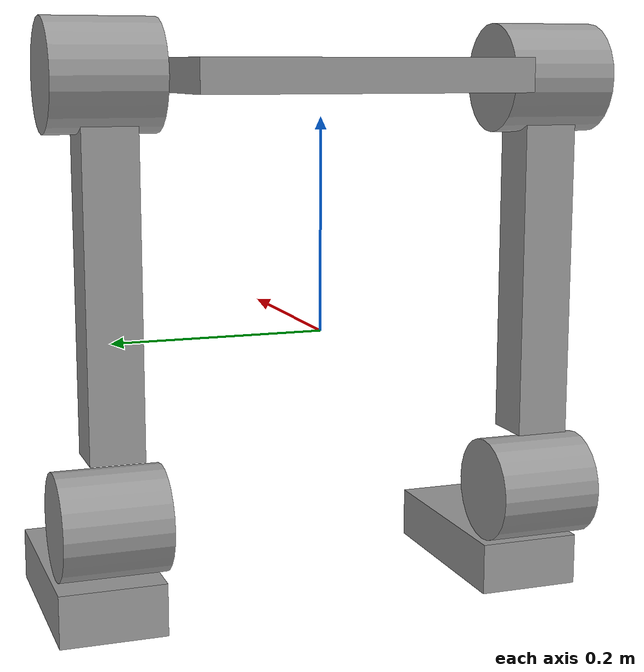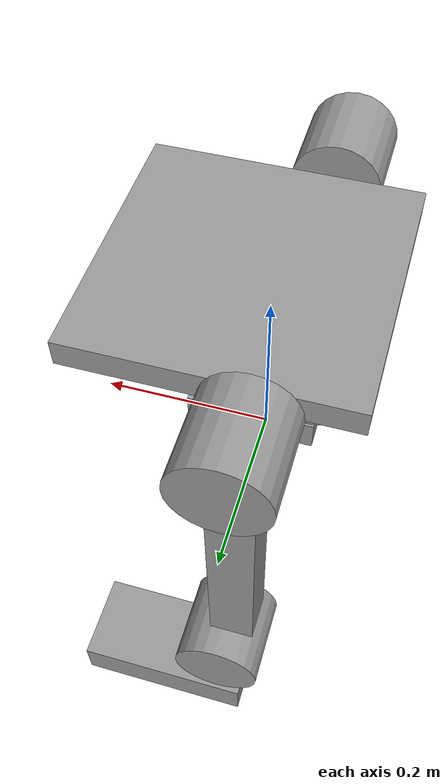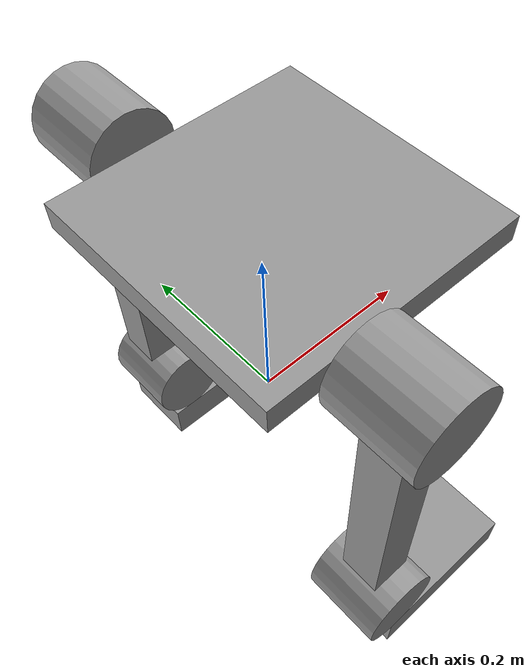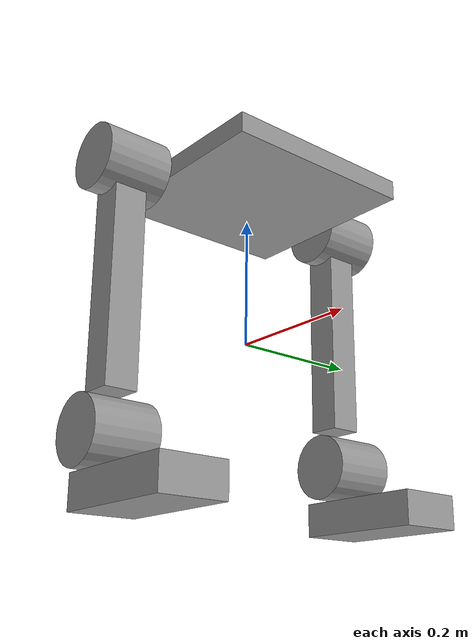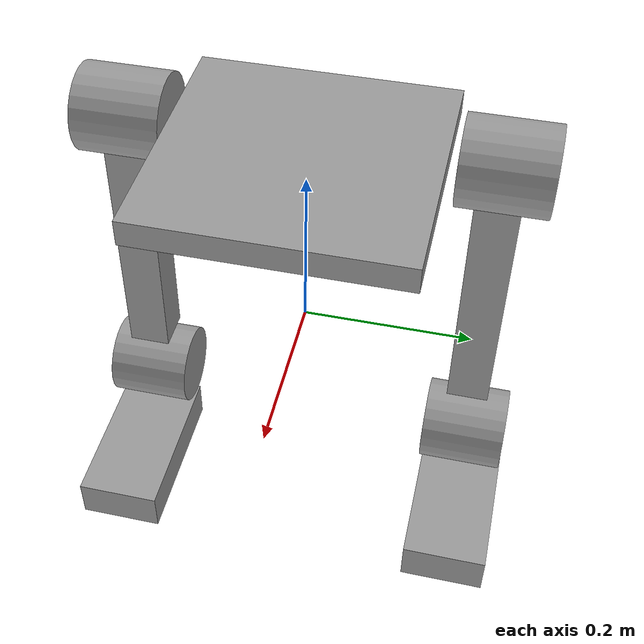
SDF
<?xml version='1.0'?>
<sdf version='1.6'>
  <model name='humanoid'>
    <link name='link_0'>
      <pose frame=''>0.060357 0.210879 -0.241979 0 -0 0</pose>
      <inertial>
        <mass>1</mass>
        <inertia>
          <ixx>0.166667</ixx>
          <ixy>0</ixy>
          <ixz>0</ixz>
          <iyy>0.166667</iyy>
          <iyz>0</iyz>
          <izz>0.166667</izz>
        </inertia>
        <pose frame=''>0 0 0 0 -0 0</pose>
      </inertial>
      <gravity>1</gravity>
      <self_collide>0</self_collide>
      <kinematic>0</kinematic>
      <visual name='visual'>
        <pose frame=''>0 0 0 0 -0 0</pose>
        <geometry>
          <box>
            <size>0.2 0.1 0.05</size>
          </box>
        </geometry>
        <material>
          <lighting>1</lighting>
          <script>
            <uri>file://media/materials/scripts/gazebo.material</uri>
            <name>Gazebo/Grey</name>
          </script>
          <ambient>0.3 0.3 0.3 1</ambient>
          <diffuse>0.7 0.7 0.7 1</diffuse>
          <specular>0.01 0.01 0.01 1</specular>
          <emissive>0 0 0 1</emissive>
          <shader type='vertex'>
            <normal_map>__default__</normal_map>
          </shader>
        </material>
        <transparency>0</transparency>
        <cast_shadows>1</cast_shadows>
      </visual>
      <collision name='collision'>
        <laser_retro>0</laser_retro>
        <max_contacts>10</max_contacts>
        <pose frame=''>0 0 0 0 -0 0</pose>
        <geometry>
          <box>
            <size>0.2 0.1 0.05</size>
          </box>
        </geometry>
        <surface>
          <friction>
            <ode>
              <mu>1</mu>
              <mu2>1</mu2>
              <fdir1>0 0 0</fdir1>
              <slip1>0</slip1>
              <slip2>0</slip2>
            </ode>
            <torsional>
              <coefficient>1</coefficient>
              <patch_radius>0</patch_radius>
              <surface_radius>0</surface_radius>
              <use_patch_radius>1</use_patch_radius>
              <ode>
                <slip>0</slip>
              </ode>
            </torsional>
          </friction>
          <bounce>
            <restitution_coefficient>0</restitution_coefficient>
            <threshold>1e+06</threshold>
          </bounce>
          <contact>
            <collide_without_contact>0</collide_without_contact>
            <collide_without_contact_bitmask>1</collide_without_contact_bitmask>
            <collide_bitmask>1</collide_bitmask>
            <ode>
              <soft_cfm>0</soft_cfm>
              <soft_erp>0.2</soft_erp>
              <kp>1e+13</kp>
              <kd>1</kd>
              <max_vel>0.01</max_vel>
              <min_depth>0</min_depth>
            </ode>
            <bullet>
              <split_impulse>1</split_impulse>
              <split_impulse_penetration_threshold>-0.01</split_impulse_penetration_threshold>
              <soft_cfm>0</soft_cfm>
              <soft_erp>0.2</soft_erp>
              <kp>1e+13</kp>
              <kd>1</kd>
            </bullet>
          </contact>
        </surface>
      </collision>
    </link>
    <link name='link_0_clone'>
      <pose frame=''>0.061975 -0.207859 -0.241979 0 -0 0</pose>
      <inertial>
        <mass>1</mass>
        <inertia>
          <ixx>0.166667</ixx>
          <ixy>0</ixy>
          <ixz>0</ixz>
          <iyy>0.166667</iyy>
          <iyz>0</iyz>
          <izz>0.166667</izz>
        </inertia>
        <pose frame=''>0 0 0 0 -0 0</pose>
      </inertial>
      <self_collide>0</self_collide>
      <kinematic>0</kinematic>
      <visual name='visual'>
        <pose frame=''>0 0 0 0 -0 0</pose>
        <geometry>
          <box>
            <size>0.2 0.1 0.05</size>
          </box>
        </geometry>
        <material>
          <lighting>1</lighting>
          <script>
            <uri>file://media/materials/scripts/gazebo.material</uri>
            <name>Gazebo/Grey</name>
          </script>
          <ambient>0.3 0.3 0.3 1</ambient>
          <diffuse>0.7 0.7 0.7 1</diffuse>
          <specular>0.01 0.01 0.01 1</specular>
          <emissive>0 0 0 1</emissive>
          <shader type='vertex'>
            <normal_map>__default__</normal_map>
          </shader>
        </material>
        <transparency>0</transparency>
        <cast_shadows>1</cast_shadows>
      </visual>
      <collision name='collision'>
        <laser_retro>0</laser_retro>
        <max_contacts>10</max_contacts>
        <pose frame=''>0 0 0 0 -0 0</pose>
        <geometry>
          <box>
            <size>0.2 0.1 0.05</size>
          </box>
        </geometry>
        <surface>
          <friction>
            <ode>
              <mu>1</mu>
              <mu2>1</mu2>
              <fdir1>0 0 0</fdir1>
              <slip1>0</slip1>
              <slip2>0</slip2>
            </ode>
            <torsional>
              <coefficient>1</coefficient>
              <patch_radius>0</patch_radius>
              <surface_radius>0</surface_radius>
              <use_patch_radius>1</use_patch_radius>
              <ode>
                <slip>0</slip>
              </ode>
            </torsional>
          </friction>
          <bounce>
            <restitution_coefficient>0</restitution_coefficient>
            <threshold>1e+06</threshold>
          </bounce>
          <contact>
            <collide_without_contact>0</collide_without_contact>
            <collide_without_contact_bitmask>1</collide_without_contact_bitmask>
            <collide_bitmask>1</collide_bitmask>
            <ode>
              <soft_cfm>0</soft_cfm>
              <soft_erp>0.2</soft_erp>
              <kp>1e+13</kp>
              <kd>1</kd>
              <max_vel>0.01</max_vel>
              <min_depth>0</min_depth>
            </ode>
            <bullet>
              <split_impulse>1</split_impulse>
              <split_impulse_penetration_threshold>-0.01</split_impulse_penetration_threshold>
              <soft_cfm>0</soft_cfm>
              <soft_erp>0.2</soft_erp>
              <kp>1e+13</kp>
              <kd>1</kd>
            </bullet>
          </contact>
        </surface>
      </collision>
    </link>
    <link name='link_1'>
      <pose frame=''>-0.010608 0.208101 -0.16236 1.5708 -0 0</pose>
      <inertial>
        <mass>1</mass>
        <inertia>
          <ixx>0.145833</ixx>
          <ixy>0</ixy>
          <ixz>0</ixz>
          <iyy>0.145833</iyy>
          <iyz>0</iyz>
          <izz>0.125</izz>
        </inertia>
        <pose frame=''>0 0 0 0 -0 0</pose>
      </inertial>
      <gravity>1</gravity>
      <self_collide>0</self_collide>
      <kinematic>0</kinematic>
      <visual name='visual'>
        <pose frame=''>0 0 0 0 -0 0</pose>
        <geometry>
          <cylinder>
            <radius>0.05</radius>
            <length>0.1</length>
          </cylinder>
        </geometry>
        <material>
          <lighting>1</lighting>
          <script>
            <uri>file://media/materials/scripts/gazebo.material</uri>
            <name>Gazebo/Grey</name>
          </script>
          <ambient>0.3 0.3 0.3 1</ambient>
          <diffuse>0.7 0.7 0.7 1</diffuse>
          <specular>0.01 0.01 0.01 1</specular>
          <emissive>0 0 0 1</emissive>
          <shader type='vertex'>
            <normal_map>__default__</normal_map>
          </shader>
        </material>
        <transparency>0</transparency>
        <cast_shadows>1</cast_shadows>
      </visual>
      <collision name='collision'>
        <laser_retro>0</laser_retro>
        <max_contacts>10</max_contacts>
        <pose frame=''>0 0 0 0 -0 0</pose>
        <geometry>
          <cylinder>
            <radius>0.05</radius>
            <length>0.1</length>
          </cylinder>
        </geometry>
        <surface>
          <friction>
            <ode>
              <mu>1</mu>
              <mu2>1</mu2>
              <fdir1>0 0 0</fdir1>
              <slip1>0</slip1>
              <slip2>0</slip2>
            </ode>
            <torsional>
              <coefficient>1</coefficient>
              <patch_radius>0</patch_radius>
              <surface_radius>0</surface_radius>
              <use_patch_radius>1</use_patch_radius>
              <ode>
                <slip>0</slip>
              </ode>
            </torsional>
          </friction>
          <bounce>
            <restitution_coefficient>0</restitution_coefficient>
            <threshold>1e+06</threshold>
          </bounce>
          <contact>
            <collide_without_contact>0</collide_without_contact>
            <collide_without_contact_bitmask>1</collide_without_contact_bitmask>
            <collide_bitmask>1</collide_bitmask>
            <ode>
              <soft_cfm>0</soft_cfm>
              <soft_erp>0.2</soft_erp>
              <kp>1e+13</kp>
              <kd>1</kd>
              <max_vel>0.01</max_vel>
              <min_depth>0</min_depth>
            </ode>
            <bullet>
              <split_impulse>1</split_impulse>
              <split_impulse_penetration_threshold>-0.01</split_impulse_penetration_threshold>
              <soft_cfm>0</soft_cfm>
              <soft_erp>0.2</soft_erp>
              <kp>1e+13</kp>
              <kd>1</kd>
            </bullet>
          </contact>
        </surface>
      </collision>
    </link>
    <link name='link_1_clone'>
      <pose frame=''>-0.02978 -0.208513 -0.16236 1.5708 -0 0</pose>
      <inertial>
        <mass>1</mass>
        <inertia>
          <ixx>0.145833</ixx>
          <ixy>0</ixy>
          <ixz>0</ixz>
          <iyy>0.145833</iyy>
          <iyz>0</iyz>
          <izz>0.125</izz>
        </inertia>
        <pose frame=''>0 0 0 0 -0 0</pose>
      </inertial>
      <self_collide>0</self_collide>
      <kinematic>0</kinematic>
      <visual name='visual'>
        <pose frame=''>0 0 0 0 -0 0</pose>
        <geometry>
          <cylinder>
            <radius>0.05</radius>
            <length>0.1</length>
          </cylinder>
        </geometry>
        <material>
          <lighting>1</lighting>
          <script>
            <uri>file://media/materials/scripts/gazebo.material</uri>
            <name>Gazebo/Grey</name>
          </script>
          <ambient>0.3 0.3 0.3 1</ambient>
          <diffuse>0.7 0.7 0.7 1</diffuse>
          <specular>0.01 0.01 0.01 1</specular>
          <emissive>0 0 0 1</emissive>
          <shader type='vertex'>
            <normal_map>__default__</normal_map>
          </shader>
        </material>
        <transparency>0</transparency>
        <cast_shadows>1</cast_shadows>
      </visual>
      <collision name='collision'>
        <laser_retro>0</laser_retro>
        <max_contacts>10</max_contacts>
        <pose frame=''>0 0 0 0 -0 0</pose>
        <geometry>
          <cylinder>
            <radius>0.05</radius>
            <length>0.1</length>
          </cylinder>
        </geometry>
        <surface>
          <friction>
            <ode>
              <mu>1</mu>
              <mu2>1</mu2>
              <fdir1>0 0 0</fdir1>
              <slip1>0</slip1>
              <slip2>0</slip2>
            </ode>
            <torsional>
              <coefficient>1</coefficient>
              <patch_radius>0</patch_radius>
              <surface_radius>0</surface_radius>
              <use_patch_radius>1</use_patch_radius>
              <ode>
                <slip>0</slip>
              </ode>
            </torsional>
          </friction>
          <bounce>
            <restitution_coefficient>0</restitution_coefficient>
            <threshold>1e+06</threshold>
          </bounce>
          <contact>
            <collide_without_contact>0</collide_without_contact>
            <collide_without_contact_bitmask>1</collide_without_contact_bitmask>
            <collide_bitmask>1</collide_bitmask>
            <ode>
              <soft_cfm>0</soft_cfm>
              <soft_erp>0.2</soft_erp>
              <kp>1e+13</kp>
              <kd>1</kd>
              <max_vel>0.01</max_vel>
              <min_depth>0</min_depth>
            </ode>
            <bullet>
              <split_impulse>1</split_impulse>
              <split_impulse_penetration_threshold>-0.01</split_impulse_penetration_threshold>
              <soft_cfm>0</soft_cfm>
              <soft_erp>0.2</soft_erp>
              <kp>1e+13</kp>
              <kd>1</kd>
            </bullet>
          </contact>
        </surface>
      </collision>
    </link>
    <link name='link_2'>
      <pose frame=''>-0.023085 0.206005 0.05105 3.1408 -0 0</pose>
      <inertial>
        <mass>1</mass>
        <inertia>
          <ixx>0.166667</ixx>
          <ixy>0</ixy>
          <ixz>0</ixz>
          <iyy>0.166667</iyy>
          <iyz>0</iyz>
          <izz>0.166667</izz>
        </inertia>
        <pose frame=''>0 0 0 0 -0 0</pose>
      </inertial>
      <gravity>1</gravity>
      <self_collide>0</self_collide>
      <kinematic>0</kinematic>
      <visual name='visual'>
        <pose frame=''>0 0 0 0 -0 0</pose>
        <geometry>
          <box>
            <size>0.05 0.05 0.3</size>
          </box>
        </geometry>
        <material>
          <lighting>1</lighting>
          <script>
            <uri>file://media/materials/scripts/gazebo.material</uri>
            <name>Gazebo/Grey</name>
          </script>
          <ambient>0.3 0.3 0.3 1</ambient>
          <diffuse>0.7 0.7 0.7 1</diffuse>
          <specular>0.01 0.01 0.01 1</specular>
          <emissive>0 0 0 1</emissive>
          <shader type='vertex'>
            <normal_map>__default__</normal_map>
          </shader>
        </material>
        <transparency>0</transparency>
        <cast_shadows>1</cast_shadows>
      </visual>
      <collision name='collision'>
        <laser_retro>0</laser_retro>
        <max_contacts>10</max_contacts>
        <pose frame=''>0 0 0 0 -0 0</pose>
        <geometry>
          <box>
            <size>0.05 0.05 0.3</size>
          </box>
        </geometry>
        <surface>
          <friction>
            <ode>
              <mu>1</mu>
              <mu2>1</mu2>
              <fdir1>0 0 0</fdir1>
              <slip1>0</slip1>
              <slip2>0</slip2>
            </ode>
            <torsional>
              <coefficient>1</coefficient>
              <patch_radius>0</patch_radius>
              <surface_radius>0</surface_radius>
              <use_patch_radius>1</use_patch_radius>
              <ode>
                <slip>0</slip>
              </ode>
            </torsional>
          </friction>
          <bounce>
            <restitution_coefficient>0</restitution_coefficient>
            <threshold>1e+06</threshold>
          </bounce>
          <contact>
            <collide_without_contact>0</collide_without_contact>
            <collide_without_contact_bitmask>1</collide_without_contact_bitmask>
            <collide_bitmask>1</collide_bitmask>
            <ode>
              <soft_cfm>0</soft_cfm>
              <soft_erp>0.2</soft_erp>
              <kp>1e+13</kp>
              <kd>1</kd>
              <max_vel>0.01</max_vel>
              <min_depth>0</min_depth>
            </ode>
            <bullet>
              <split_impulse>1</split_impulse>
              <split_impulse_penetration_threshold>-0.01</split_impulse_penetration_threshold>
              <soft_cfm>0</soft_cfm>
              <soft_erp>0.2</soft_erp>
              <kp>1e+13</kp>
              <kd>1</kd>
            </bullet>
          </contact>
        </surface>
      </collision>
    </link>
    <link name='link_2_clone'>
      <pose frame=''>-0.02978 -0.208513 0.045658 3.1408 -0 0</pose>
      <inertial>
        <mass>1</mass>
        <inertia>
          <ixx>0.166667</ixx>
          <ixy>0</ixy>
          <ixz>0</ixz>
          <iyy>0.166667</iyy>
          <iyz>0</iyz>
          <izz>0.166667</izz>
        </inertia>
        <pose frame=''>0 0 0 0 -0 0</pose>
      </inertial>
      <self_collide>0</self_collide>
      <kinematic>0</kinematic>
      <visual name='visual'>
        <pose frame=''>0 0 0 0 -0 0</pose>
        <geometry>
          <box>
            <size>0.05 0.05 0.3</size>
          </box>
        </geometry>
        <material>
          <lighting>1</lighting>
          <script>
            <uri>file://media/materials/scripts/gazebo.material</uri>
            <name>Gazebo/Grey</name>
          </script>
          <ambient>0.3 0.3 0.3 1</ambient>
          <diffuse>0.7 0.7 0.7 1</diffuse>
          <specular>0.01 0.01 0.01 1</specular>
          <emissive>0 0 0 1</emissive>
          <shader type='vertex'>
            <normal_map>__default__</normal_map>
          </shader>
        </material>
        <transparency>0</transparency>
        <cast_shadows>1</cast_shadows>
      </visual>
      <collision name='collision'>
        <laser_retro>0</laser_retro>
        <max_contacts>10</max_contacts>
        <pose frame=''>0 0 0 0 -0 0</pose>
        <geometry>
          <box>
            <size>0.05 0.05 0.3</size>
          </box>
        </geometry>
        <surface>
          <friction>
            <ode>
              <mu>1</mu>
              <mu2>1</mu2>
              <fdir1>0 0 0</fdir1>
              <slip1>0</slip1>
              <slip2>0</slip2>
            </ode>
            <torsional>
              <coefficient>1</coefficient>
              <patch_radius>0</patch_radius>
              <surface_radius>0</surface_radius>
              <use_patch_radius>1</use_patch_radius>
              <ode>
                <slip>0</slip>
              </ode>
            </torsional>
          </friction>
          <bounce>
            <restitution_coefficient>0</restitution_coefficient>
            <threshold>1e+06</threshold>
          </bounce>
          <contact>
            <collide_without_contact>0</collide_without_contact>
            <collide_without_contact_bitmask>1</collide_without_contact_bitmask>
            <collide_bitmask>1</collide_bitmask>
            <ode>
              <soft_cfm>0</soft_cfm>
              <soft_erp>0.2</soft_erp>
              <kp>1e+13</kp>
              <kd>1</kd>
              <max_vel>0.01</max_vel>
              <min_depth>0</min_depth>
            </ode>
            <bullet>
              <split_impulse>1</split_impulse>
              <split_impulse_penetration_threshold>-0.01</split_impulse_penetration_threshold>
              <soft_cfm>0</soft_cfm>
              <soft_erp>0.2</soft_erp>
              <kp>1e+13</kp>
              <kd>1</kd>
            </bullet>
          </contact>
        </surface>
      </collision>
    </link>
    <link name='link_3'>
      <pose frame=''>-0.02215 0.20988 0.238353 1.5708 -0 0</pose>
      <inertial>
        <mass>1</mass>
        <inertia>
          <ixx>0.145833</ixx>
          <ixy>0</ixy>
          <ixz>0</ixz>
          <iyy>0.145833</iyy>
          <iyz>0</iyz>
          <izz>0.125</izz>
        </inertia>
        <pose frame=''>0 0 0 0 -0 0</pose>
      </inertial>
      <gravity>1</gravity>
      <self_collide>0</self_collide>
      <kinematic>0</kinematic>
      <visual name='visual'>
        <pose frame=''>0 0 0 0 -0 0</pose>
        <geometry>
          <cylinder>
            <radius>0.05</radius>
            <length>0.1</length>
          </cylinder>
        </geometry>
        <material>
          <lighting>1</lighting>
          <script>
            <uri>file://media/materials/scripts/gazebo.material</uri>
            <name>Gazebo/Grey</name>
          </script>
          <ambient>0.3 0.3 0.3 1</ambient>
          <diffuse>0.7 0.7 0.7 1</diffuse>
          <specular>0.01 0.01 0.01 1</specular>
          <emissive>0 0 0 1</emissive>
          <shader type='vertex'>
            <normal_map>__default__</normal_map>
          </shader>
        </material>
        <transparency>0</transparency>
        <cast_shadows>1</cast_shadows>
      </visual>
      <collision name='collision'>
        <laser_retro>0</laser_retro>
        <max_contacts>10</max_contacts>
        <pose frame=''>0 0 0 0 -0 0</pose>
        <geometry>
          <cylinder>
            <radius>0.05</radius>
            <length>0.1</length>
          </cylinder>
        </geometry>
        <surface>
          <friction>
            <ode>
              <mu>1</mu>
              <mu2>1</mu2>
              <fdir1>0 0 0</fdir1>
              <slip1>0</slip1>
              <slip2>0</slip2>
            </ode>
            <torsional>
              <coefficient>1</coefficient>
              <patch_radius>0</patch_radius>
              <surface_radius>0</surface_radius>
              <use_patch_radius>1</use_patch_radius>
              <ode>
                <slip>0</slip>
              </ode>
            </torsional>
          </friction>
          <bounce>
            <restitution_coefficient>0</restitution_coefficient>
            <threshold>1e+06</threshold>
          </bounce>
          <contact>
            <collide_without_contact>0</collide_without_contact>
            <collide_without_contact_bitmask>1</collide_without_contact_bitmask>
            <collide_bitmask>1</collide_bitmask>
            <ode>
              <soft_cfm>0</soft_cfm>
              <soft_erp>0.2</soft_erp>
              <kp>1e+13</kp>
              <kd>1</kd>
              <max_vel>0.01</max_vel>
              <min_depth>0</min_depth>
            </ode>
            <bullet>
              <split_impulse>1</split_impulse>
              <split_impulse_penetration_threshold>-0.01</split_impulse_penetration_threshold>
              <soft_cfm>0</soft_cfm>
              <soft_erp>0.2</soft_erp>
              <kp>1e+13</kp>
              <kd>1</kd>
            </bullet>
          </contact>
        </surface>
      </collision>
    </link>
    <link name='link_3_clone'>
      <pose frame=''>-0.02978 -0.208513 0.23526 1.5708 -0 0</pose>
      <inertial>
        <mass>1</mass>
        <inertia>
          <ixx>0.145833</ixx>
          <ixy>0</ixy>
          <ixz>0</ixz>
          <iyy>0.145833</iyy>
          <iyz>0</iyz>
          <izz>0.125</izz>
        </inertia>
        <pose frame=''>0 0 0 0 -0 0</pose>
      </inertial>
      <self_collide>0</self_collide>
      <kinematic>0</kinematic>
      <visual name='visual'>
        <pose frame=''>0 0 0 0 -0 0</pose>
        <geometry>
          <cylinder>
            <radius>0.05</radius>
            <length>0.1</length>
          </cylinder>
        </geometry>
        <material>
          <lighting>1</lighting>
          <script>
            <uri>file://media/materials/scripts/gazebo.material</uri>
            <name>Gazebo/Grey</name>
          </script>
          <ambient>0.3 0.3 0.3 1</ambient>
          <diffuse>0.7 0.7 0.7 1</diffuse>
          <specular>0.01 0.01 0.01 1</specular>
          <emissive>0 0 0 1</emissive>
          <shader type='vertex'>
            <normal_map>__default__</normal_map>
          </shader>
        </material>
        <transparency>0</transparency>
        <cast_shadows>1</cast_shadows>
      </visual>
      <collision name='collision'>
        <laser_retro>0</laser_retro>
        <max_contacts>10</max_contacts>
        <pose frame=''>0 0 0 0 -0 0</pose>
        <geometry>
          <cylinder>
            <radius>0.05</radius>
            <length>0.1</length>
          </cylinder>
        </geometry>
        <surface>
          <friction>
            <ode>
              <mu>1</mu>
              <mu2>1</mu2>
              <fdir1>0 0 0</fdir1>
              <slip1>0</slip1>
              <slip2>0</slip2>
            </ode>
            <torsional>
              <coefficient>1</coefficient>
              <patch_radius>0</patch_radius>
              <surface_radius>0</surface_radius>
              <use_patch_radius>1</use_patch_radius>
              <ode>
                <slip>0</slip>
              </ode>
            </torsional>
          </friction>
          <bounce>
            <restitution_coefficient>0</restitution_coefficient>
            <threshold>1e+06</threshold>
          </bounce>
          <contact>
            <collide_without_contact>0</collide_without_contact>
            <collide_without_contact_bitmask>1</collide_without_contact_bitmask>
            <collide_bitmask>1</collide_bitmask>
            <ode>
              <soft_cfm>0</soft_cfm>
              <soft_erp>0.2</soft_erp>
              <kp>1e+13</kp>
              <kd>1</kd>
              <max_vel>0.01</max_vel>
              <min_depth>0</min_depth>
            </ode>
            <bullet>
              <split_impulse>1</split_impulse>
              <split_impulse_penetration_threshold>-0.01</split_impulse_penetration_threshold>
              <soft_cfm>0</soft_cfm>
              <soft_erp>0.2</soft_erp>
              <kp>1e+13</kp>
              <kd>1</kd>
            </bullet>
          </contact>
        </surface>
      </collision>
    </link>
    <link name='link_4'>
      <pose frame=''>0.02285 -0.001563 0.238353 0 -0 0</pose>
      <inertial>
        <mass>1</mass>
        <inertia>
          <ixx>0.166667</ixx>
          <ixy>0</ixy>
          <ixz>0</ixz>
          <iyy>0.166667</iyy>
          <iyz>0</iyz>
          <izz>0.166667</izz>
        </inertia>
        <pose frame=''>0 0 0 0 -0 0</pose>
      </inertial>
      <gravity>1</gravity>
      <self_collide>0</self_collide>
      <kinematic>0</kinematic>
      <visual name='visual'>
        <pose frame=''>0 0 0 0 -0 0</pose>
        <geometry>
          <box>
            <size>0.3 0.3 0.03</size>
          </box>
        </geometry>
        <material>
          <lighting>1</lighting>
          <script>
            <uri>file://media/materials/scripts/gazebo.material</uri>
            <name>Gazebo/Grey</name>
          </script>
          <ambient>0.3 0.3 0.3 1</ambient>
          <diffuse>0.7 0.7 0.7 1</diffuse>
          <specular>0.01 0.01 0.01 1</specular>
          <emissive>0 0 0 1</emissive>
          <shader type='vertex'>
            <normal_map>__default__</normal_map>
          </shader>
        </material>
        <transparency>0</transparency>
        <cast_shadows>1</cast_shadows>
      </visual>
      <collision name='collision'>
        <laser_retro>0</laser_retro>
        <max_contacts>10</max_contacts>
        <pose frame=''>0 0 0 0 -0 0</pose>
        <geometry>
          <box>
            <size>0.3 0.3 0.03</size>
          </box>
        </geometry>
        <surface>
          <friction>
            <ode>
              <mu>1</mu>
              <mu2>1</mu2>
              <fdir1>0 0 0</fdir1>
              <slip1>0</slip1>
              <slip2>0</slip2>
            </ode>
            <torsional>
              <coefficient>1</coefficient>
              <patch_radius>0</patch_radius>
              <surface_radius>0</surface_radius>
              <use_patch_radius>1</use_patch_radius>
              <ode>
                <slip>0</slip>
              </ode>
            </torsional>
          </friction>
          <bounce>
            <restitution_coefficient>0</restitution_coefficient>
            <threshold>1e+06</threshold>
          </bounce>
          <contact>
            <collide_without_contact>0</collide_without_contact>
            <collide_without_contact_bitmask>1</collide_without_contact_bitmask>
            <collide_bitmask>1</collide_bitmask>
            <ode>
              <soft_cfm>0</soft_cfm>
              <soft_erp>0.2</soft_erp>
              <kp>1e+13</kp>
              <kd>1</kd>
              <max_vel>0.01</max_vel>
              <min_depth>0</min_depth>
            </ode>
            <bullet>
              <split_impulse>1</split_impulse>
              <split_impulse_penetration_threshold>-0.01</split_impulse_penetration_threshold>
              <soft_cfm>0</soft_cfm>
              <soft_erp>0.2</soft_erp>
              <kp>1e+13</kp>
              <kd>1</kd>
            </bullet>
          </contact>
        </surface>
      </collision>
    </link>
    <joint name='link_0_JOINT_2' type='fixed'>
      <parent>link_0</parent>
      <child>link_1</child>
      <pose frame=''>0 0 0 0 -0 0</pose>
      <physics>
        <ode>
          <limit>
            <cfm>0</cfm>
            <erp>0.2</erp>
          </limit>
          <suspension>
            <cfm>0</cfm>
            <erp>0.2</erp>
          </suspension>
        </ode>
      </physics>
    </joint>
    <joint name='link_1_JOINT_3' type='revolute'>
      <parent>link_1</parent>
      <child>link_2</child>
      <pose frame=''>0 0 0 0 -0 0</pose>
      <axis>
        <xyz>1 0 0</xyz>
        <use_parent_model_frame>0</use_parent_model_frame>
        <limit>
          <lower>-1.79769e+308</lower>
          <upper>1.79769e+308</upper>
          <effort>-1</effort>
          <velocity>-1</velocity>
        </limit>
        <dynamics>
          <spring_reference>0</spring_reference>
          <spring_stiffness>0</spring_stiffness>
          <damping>0</damping>
        </dynamics>
      </axis>
      <physics>
        <ode>
          <limit>
            <cfm>0</cfm>
            <erp>0.2</erp>
          </limit>
          <suspension>
            <cfm>0</cfm>
            <erp>0.2</erp>
          </suspension>
        </ode>
      </physics>
    </joint>
    <joint name='link_1_clone_JOINT_9' type='revolute'>
      <parent>link_1_clone</parent>
      <child>link_0_clone</child>
      <pose frame=''>0 0 0 0 -0 0</pose>
      <axis>
        <xyz>1 0 0</xyz>
        <use_parent_model_frame>0</use_parent_model_frame>
        <limit>
          <lower>-1.79769e+308</lower>
          <upper>1.79769e+308</upper>
          <effort>-1</effort>
          <velocity>-1</velocity>
        </limit>
        <dynamics>
          <spring_reference>0</spring_reference>
          <spring_stiffness>0</spring_stiffness>
          <damping>0</damping>
        </dynamics>
      </axis>
      <physics>
        <ode>
          <limit>
            <cfm>0</cfm>
            <erp>0.2</erp>
          </limit>
          <suspension>
            <cfm>0</cfm>
            <erp>0.2</erp>
          </suspension>
        </ode>
      </physics>
    </joint>
    <joint name='link_2_JOINT_4' type='fixed'>
      <parent>link_2</parent>
      <child>link_3</child>
      <pose frame=''>0 0 0 0 -0 0</pose>
      <physics>
        <ode>
          <limit>
            <cfm>0</cfm>
            <erp>0.2</erp>
          </limit>
          <suspension>
            <cfm>0</cfm>
            <erp>0.2</erp>
          </suspension>
        </ode>
      </physics>
    </joint>
    <joint name='link_2_clone_JOINT_8' type='revolute'>
      <parent>link_2_clone</parent>
      <child>link_1_clone</child>
      <pose frame=''>0 0 0 0 -0 0</pose>
      <axis>
        <xyz>1 0 0</xyz>
        <use_parent_model_frame>0</use_parent_model_frame>
        <limit>
          <lower>-1.79769e+308</lower>
          <upper>1.79769e+308</upper>
          <effort>-1</effort>
          <velocity>-1</velocity>
        </limit>
        <dynamics>
          <spring_reference>0</spring_reference>
          <spring_stiffness>0</spring_stiffness>
          <damping>0</damping>
        </dynamics>
      </axis>
      <physics>
        <ode>
          <limit>
            <cfm>0</cfm>
            <erp>0.2</erp>
          </limit>
          <suspension>
            <cfm>0</cfm>
            <erp>0.2</erp>
          </suspension>
        </ode>
      </physics>
    </joint>
    <joint name='link_3_JOINT_5' type='revolute'>
      <parent>link_3</parent>
      <child>link_4</child>
      <pose frame=''>0 0 0 0 -0 0</pose>
      <axis>
        <xyz>1 0 0</xyz>
        <use_parent_model_frame>0</use_parent_model_frame>
        <limit>
          <lower>-1.79769e+308</lower>
          <upper>1.79769e+308</upper>
          <effort>-1</effort>
          <velocity>-1</velocity>
        </limit>
        <dynamics>
          <spring_reference>0</spring_reference>
          <spring_stiffness>0</spring_stiffness>
          <damping>0</damping>
        </dynamics>
      </axis>
      <physics>
        <ode>
          <limit>
            <cfm>0</cfm>
            <erp>0.2</erp>
          </limit>
          <suspension>
            <cfm>0</cfm>
            <erp>0.2</erp>
          </suspension>
        </ode>
      </physics>
    </joint>
    <joint name='link_3_clone_JOINT_7' type='revolute'>
      <parent>link_3_clone</parent>
      <child>link_2_clone</child>
      <pose frame=''>0 0 0 0 -0 0</pose>
      <axis>
        <xyz>1 0 0</xyz>
        <use_parent_model_frame>0</use_parent_model_frame>
        <limit>
          <lower>-1.79769e+308</lower>
          <upper>1.79769e+308</upper>
          <effort>-1</effort>
          <velocity>-1</velocity>
        </limit>
        <dynamics>
          <spring_reference>0</spring_reference>
          <spring_stiffness>0</spring_stiffness>
          <damping>0</damping>
        </dynamics>
      </axis>
      <physics>
        <ode>
          <limit>
            <cfm>0</cfm>
            <erp>0.2</erp>
          </limit>
          <suspension>
            <cfm>0</cfm>
            <erp>0.2</erp>
          </suspension>
        </ode>
      </physics>
    </joint>
    <joint name='link_4_JOINT_6' type='revolute'>
      <parent>link_4</parent>
      <child>link_3_clone</child>
      <pose frame=''>0 0 0 0 -0 0</pose>
      <axis>
        <xyz>1 0 0</xyz>
        <use_parent_model_frame>0</use_parent_model_frame>
        <limit>
          <lower>-1.79769e+308</lower>
          <upper>1.79769e+308</upper>
          <effort>-1</effort>
          <velocity>-1</velocity>
        </limit>
        <dynamics>
          <spring_reference>0</spring_reference>
          <spring_stiffness>0</spring_stiffness>
          <damping>0</damping>
        </dynamics>
      </axis>
      <physics>
        <ode>
          <limit>
            <cfm>0</cfm>
            <erp>0.2</erp>
          </limit>
          <suspension>
            <cfm>0</cfm>
            <erp>0.2</erp>
          </suspension>
        </ode>
      </physics>
    </joint>
    <static>0</static>
    <allow_auto_disable>1</allow_auto_disable>
  </model>
</sdf>
